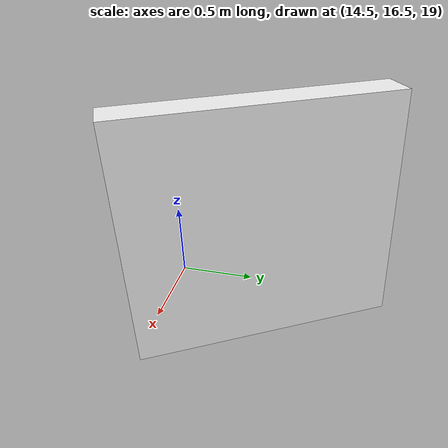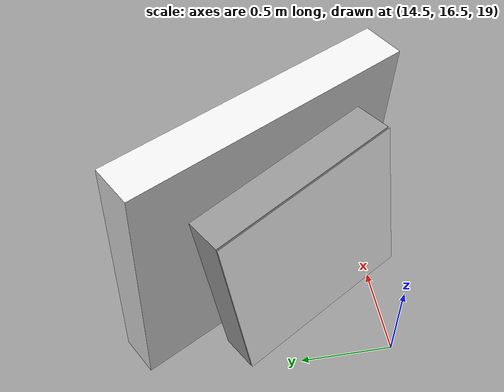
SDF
<sdf version="1.6">
 <world name="default">
  <model name="marker18_box">
   <link name="marker">
    <inertial>
     <mass>0.1</mass>
     <inertia><ixx>0</ixx><ixy>0</ixy><ixz>0</ixz><iyy>0</iyy><iyz>0</iyz><izz>0</izz></inertia>
    </inertial>
    <self_collide>1</self_collide>
    <pose>0 0 0.25 0 -0 0</pose>
    <visual name="visual">
     <geometry><box><size>1 0.001 1</size></box></geometry>
     <material>
      <script>
       <uri>/root/model_editor_models/marker18/material/scripts</uri>
       <uri>/root/model_editor_models/marker18/material/textures</uri>
       <name>Aruco/marker18</name>
      </script>
      <shader type="pixel"><normal_map>__default__</normal_map></shader>
      <emissive>0 0 0 1</emissive>
      <ambient>1 1 1 1</ambient>
      <diffuse>1 1 1 1</diffuse>
      <specular>0 0 0 1</specular>
     </material>
    </visual>
    <collision name="collision">
     <geometry><box><size>1 0.001 1</size></box></geometry>
     <surface>
      <friction>
       <ode><mu>1</mu><mu2>1</mu2><fdir1>0 0 0</fdir1><slip1>0</slip1><slip2>0</slip2></ode>
       <torsional>
        <coefficient>1</coefficient>
        <patch_radius>0</patch_radius>
        <surface_radius>0</surface_radius>
        <use_patch_radius>1</use_patch_radius>
        <ode><slip>0</slip></ode>
       </torsional>
      </friction>
      <bounce><restitution_coefficient>0</restitution_coefficient><threshold>1e+06</threshold></bounce>
      <contact>
       <collide_without_contact>0</collide_without_contact>
       <collide_without_contact_bitmask>1</collide_without_contact_bitmask>
       <collide_bitmask>1</collide_bitmask>
       <ode>
        <soft_cfm>0</soft_cfm>
        <soft_erp>0.2</soft_erp>
        <kp>1e+13</kp>
        <kd>1</kd>
        <max_vel>0.01</max_vel>
        <min_depth>0</min_depth>
       </ode>
       <bullet>
        <split_impulse>1</split_impulse>
        <split_impulse_penetration_threshold>-0.01</split_impulse_penetration_threshold>
        <soft_cfm>0</soft_cfm>
        <soft_erp>0.2</soft_erp>
        <kp>1e+13</kp>
        <kd>1</kd>
       </bullet>
      </contact>
     </surface>
    </collision>
   </link>
   <link name="link_1">
    <inertial>
     <mass>1</mass>
     <inertia>
      <ixx>0.166667</ixx>
      <ixy>0</ixy>
      <ixz>0</ixz>
      <iyy>0.166667</iyy>
      <iyz>0</iyz>
      <izz>0.166667</izz>
     </inertia>
    </inertial>
    <pose>0 0.11 0.25 0 -0 0</pose>
    <visual name="visual">
     <geometry><box><size>1 0.2 1</size></box></geometry>
     <material>
      <lighting>1</lighting>
      <script><uri>file://media/materials/scripts/gazebo.material</uri><name>Gazebo/Grey</name></script>
      <shader type="pixel"><normal_map>__default__</normal_map></shader>
      <emissive>0 0 0 1</emissive>
      <ambient>0.3 0.3 0.3 1</ambient>
      <diffuse>0.7 0.7 0.7 1</diffuse>
      <specular>0.01 0.01 0.01 1</specular>
     </material>
    </visual>
    <collision name="collision">
     <geometry><box><size>1 0.2 1</size></box></geometry>
     <surface>
      <friction>
       <ode><mu>1</mu><mu2>1</mu2><fdir1>0 0 0</fdir1><slip1>0</slip1><slip2>0</slip2></ode>
       <torsional>
        <coefficient>1</coefficient>
        <patch_radius>0</patch_radius>
        <surface_radius>0</surface_radius>
        <use_patch_radius>1</use_patch_radius>
        <ode><slip>0</slip></ode>
       </torsional>
      </friction>
      <bounce><restitution_coefficient>0</restitution_coefficient><threshold>1e+06</threshold></bounce>
      <contact>
       <collide_without_contact>0</collide_without_contact>
       <collide_without_contact_bitmask>1</collide_without_contact_bitmask>
       <collide_bitmask>1</collide_bitmask>
       <ode>
        <soft_cfm>0</soft_cfm>
        <soft_erp>0.2</soft_erp>
        <kp>1e+13</kp>
        <kd>1</kd>
        <max_vel>0.01</max_vel>
        <min_depth>0</min_depth>
       </ode>
       <bullet>
        <split_impulse>1</split_impulse>
        <split_impulse_penetration_threshold>-0.01</split_impulse_penetration_threshold>
        <soft_cfm>0</soft_cfm>
        <soft_erp>0.2</soft_erp>
        <kp>1e+13</kp>
        <kd>1</kd>
       </bullet>
      </contact>
     </surface>
    </collision>
   </link>
   <joint name="link_1_JOINT_3" type="fixed">
    <parent>link_1</parent>
    <child>marker</child>
    <physics>
     <ode><limit><cfm>0</cfm><erp>0.2</erp></limit><suspension><cfm>0</cfm><erp>0.2</erp></suspension></ode>
    </physics>
   </joint>
   <static>0</static>
   <pose>14.6719 16.8822 19.45 -0.064625 -0.127014 -1.06293</pose>
  </model>
  <model name="unit_box">
   <link name="link">
    <inertial>
     <mass>1</mass>
     <inertia>
      <ixx>0.166667</ixx>
      <ixy>0</ixy>
      <ixz>0</ixz>
      <iyy>0.166667</iyy>
      <iyz>0</iyz>
      <izz>0.166667</izz>
     </inertia>
    </inertial>
    <visual name="visual">
     <geometry><box><size>1.50119 0.213615 1.37005</size></box></geometry>
     <material>
      <script><name>Gazebo/White</name><uri>file://media/materials/scripts/gazebo.material</uri></script>
      <shader type="vertex"><normal_map>__default__</normal_map></shader>
      <ambient>1 1 1 1</ambient>
      <diffuse>1 1 1 1</diffuse>
      <specular>0 0 0 1</specular>
      <emissive>0 0 0 1</emissive>
     </material>
    </visual>
    <collision name="collision">
     <geometry><box><size>1.50119 0.213615 1.37005</size></box></geometry>
     <surface>
      <friction>
       <ode><mu>1</mu><mu2>1</mu2><fdir1>0 0 0</fdir1><slip1>0</slip1><slip2>0</slip2></ode>
       <torsional>
        <coefficient>1</coefficient>
        <patch_radius>0</patch_radius>
        <surface_radius>0</surface_radius>
        <use_patch_radius>1</use_patch_radius>
        <ode><slip>0</slip></ode>
       </torsional>
      </friction>
      <bounce><restitution_coefficient>0</restitution_coefficient><threshold>1e+06</threshold></bounce>
      <contact>
       <collide_without_contact>0</collide_without_contact>
       <collide_without_contact_bitmask>1</collide_without_contact_bitmask>
       <collide_bitmask>1</collide_bitmask>
       <ode>
        <soft_cfm>0</soft_cfm>
        <soft_erp>0.2</soft_erp>
        <kp>1e+13</kp>
        <kd>1</kd>
        <max_vel>0.01</max_vel>
        <min_depth>0</min_depth>
       </ode>
       <bullet>
        <split_impulse>1</split_impulse>
        <split_impulse_penetration_threshold>-0.01</split_impulse_penetration_threshold>
        <soft_cfm>0</soft_cfm>
        <soft_erp>0.2</soft_erp>
        <kp>1e+13</kp>
        <kd>1</kd>
       </bullet>
      </contact>
     </surface>
    </collision>
   </link>
   <static>1</static>
   <pose>14.9522 17.1779 19.7847 0.060653 -0 -1.05518</pose>
  </model>
 </world>
</sdf>
